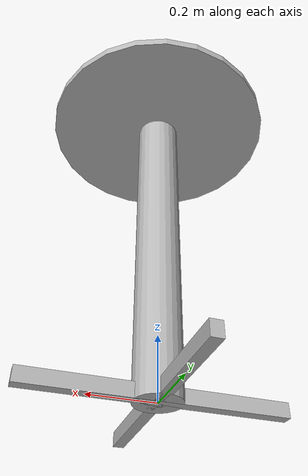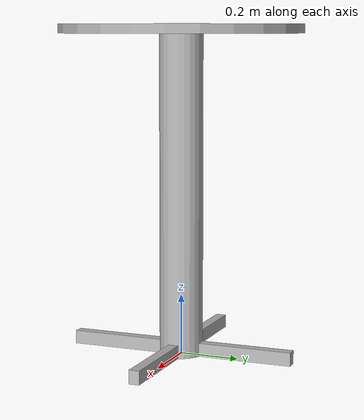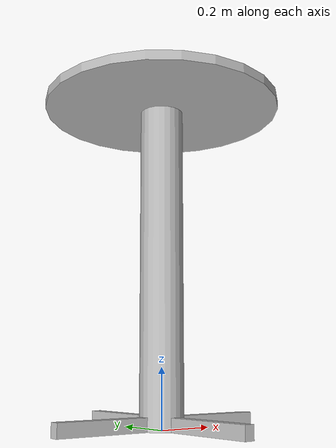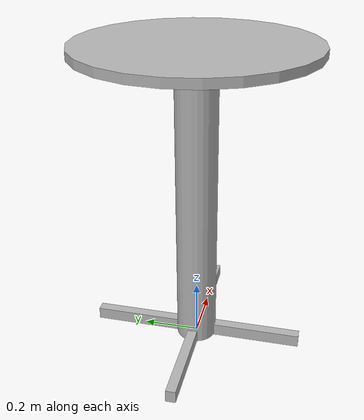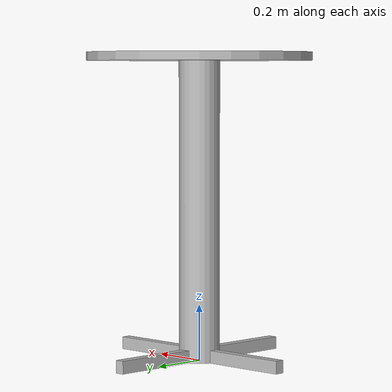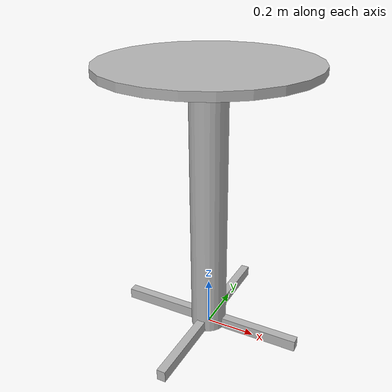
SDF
<?xml version="1.0"?>
<sdf version="1.6">
  <model name="rgo2019/table_party">
    <link name="1_link">
      <collision name="1_col">
        <geometry>
          <cylinder>
            <length>0.03</length>
            <radius>0.4</radius>
          </cylinder>
        </geometry>
      </collision>
      <visual name="1_vis">
        <geometry>
          <cylinder>
            <length>0.03</length>
            <radius>0.4</radius>
          </cylinder>
        </geometry>
      </visual>
      <pose>0 0 1.085 0 0 0</pose>
    </link>
    <link name="2_link">
      <collision name="2_col">
        <geometry>
          <cylinder>
            <length>1.08</length>
            <radius>0.0725</radius>
          </cylinder>
        </geometry>
      </collision>
      <visual name="2_vis">
        <geometry>
          <cylinder>
            <length>1.08</length>
            <radius>0.0725</radius>
          </cylinder>
        </geometry>
      </visual>
      <pose>0 0 0.54 0 0 0</pose>
    </link>
    <link name="3_link">
      <collision name="3_col">
        <geometry>
          <box>
            <size>0.775 0.035 0.045</size>
          </box>
        </geometry>
      </collision>
      <visual name="3_vis">
        <geometry>
          <box>
            <size>0.775 0.035 0.045</size>
          </box>
        </geometry>
      </visual>
      <pose>0 0 0.0225 0 0 0</pose>
    </link>
    <link name="4_link">
      <collision name="4_col">
        <geometry>
          <box>
            <size>0.035 0.775 0.045</size>
          </box>
        </geometry>
      </collision>
      <visual name="4_vis">
        <geometry>
          <box>
            <size>0.035 0.775 0.045</size>
          </box>
        </geometry>
      </visual>
      <pose>0 0 0.0225 0 0 0</pose>
    </link>
    <link name="in_front_of">
      <virtual_volume name="in_front_of_vv">
        <geometry>
          <box>
            <size>0.25 0.6 0.01</size>
          </box>
        </geometry>
        <pose>0.775 0.0 0.005 0 0 0</pose>
      </virtual_volume>
    </link>
    <link name="on_top_of">
      <virtual_volume name="on_top_of_vv">
        <geometry>
          <box>
            <size>0.52 0.52 0.15</size>
          </box>
        </geometry>
        <pose>0.0 0.0 1.195 0 0 0</pose>
      </virtual_volume>
    </link>
    <static>true</static>
  </model>
</sdf>
